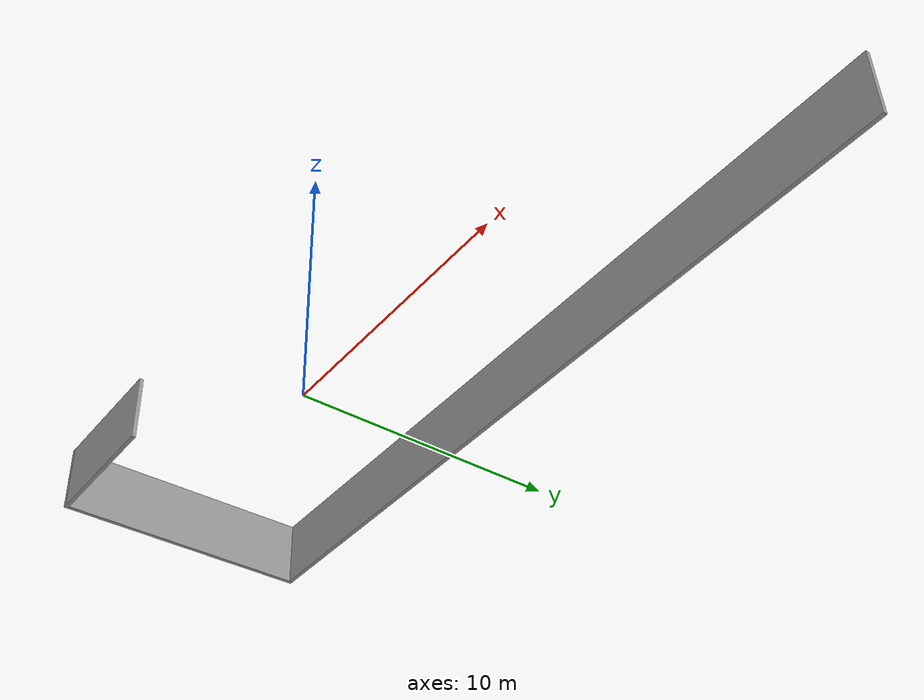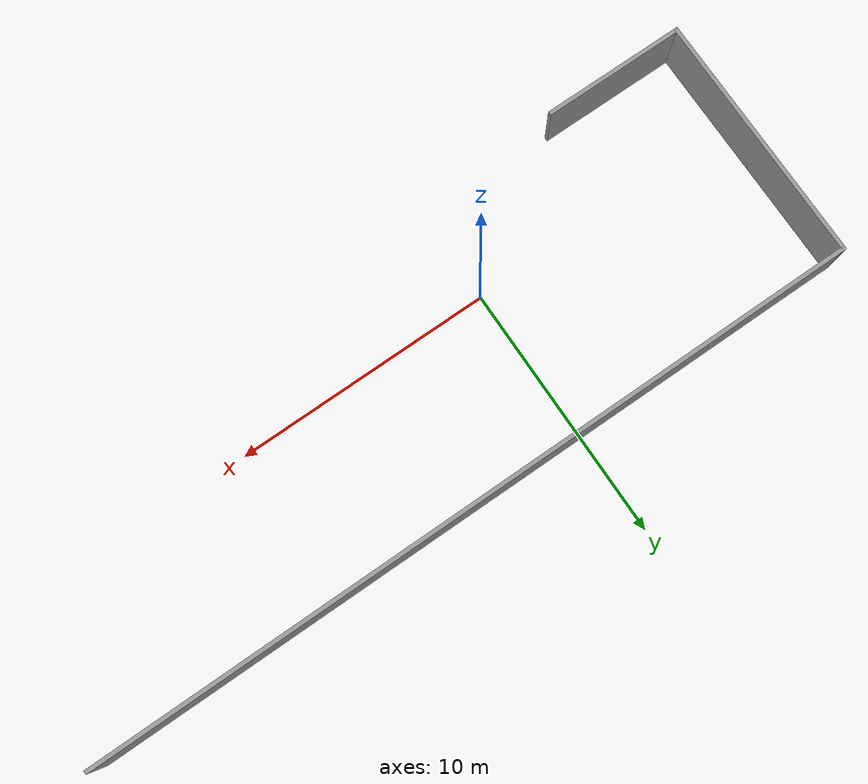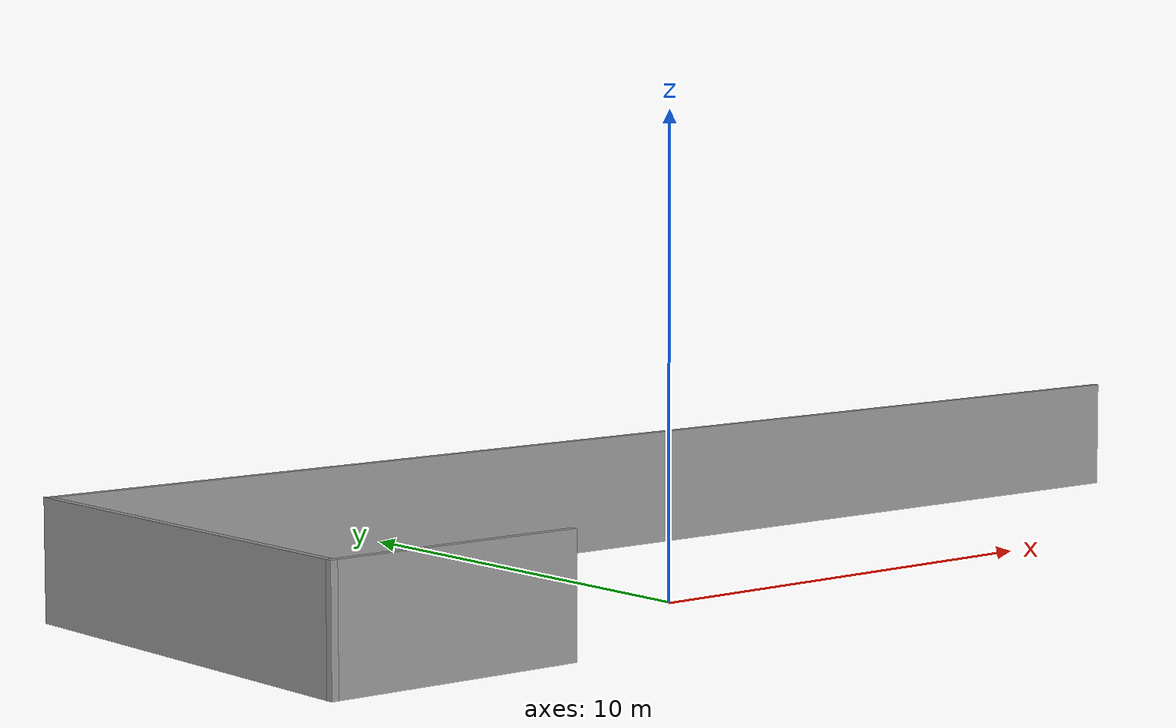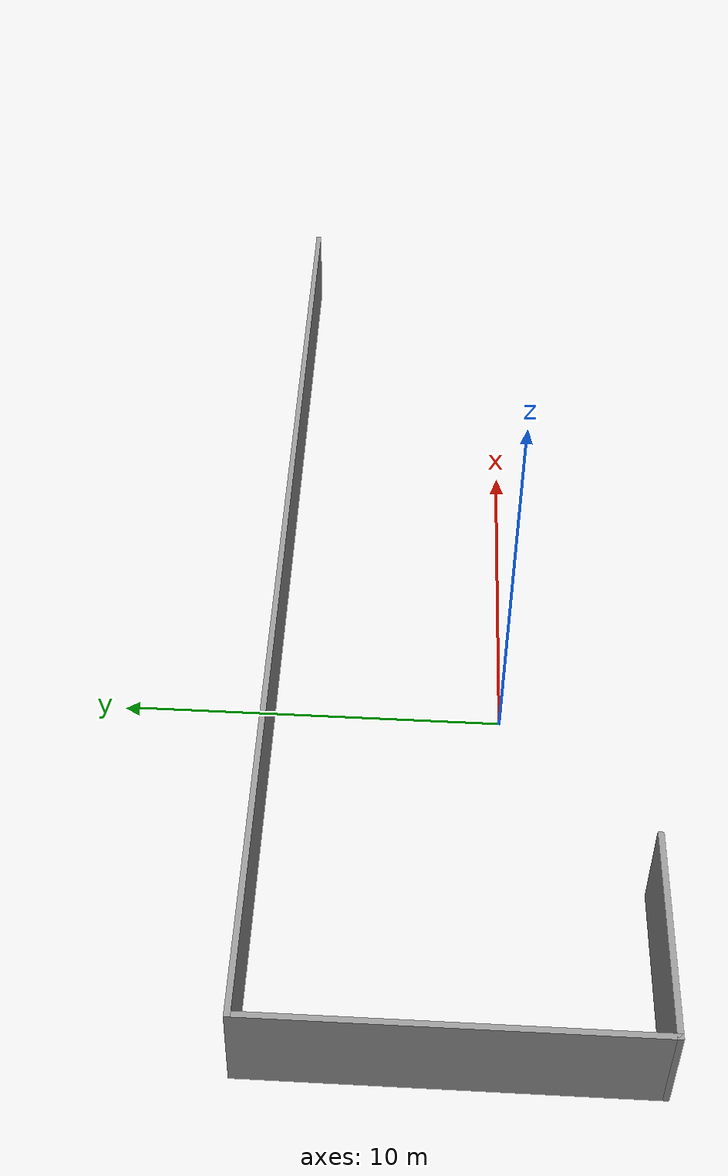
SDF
<?xml version='1.0'?>
<sdf version='1.7'>
  <model name='external_wall'>
    <pose>4.28 1.26 0 0 -0 0</pose>
    <link name='Wall_0'>
      <collision name='Wall_0_Collision'>
        <geometry>
          <box>
            <size>5.5 0.15 2.5</size>
          </box>
        </geometry>
        <pose>0 0 1.25 0 -0 0</pose>
      </collision>
      <visual name='Wall_0_Visual'>
        <pose>0 0 1.25 0 -0 0</pose>
        <geometry>
          <box>
            <size>5.5 0.15 2.5</size>
          </box>
        </geometry>
        <material>
          <script>
            <uri>file://media/materials/scripts/gazebo.material</uri>
            <name>Gazebo/Grey</name>
          </script>
          <ambient>1 1 1 1</ambient>
        </material>
        <meta>
          <layer>0</layer>
        </meta>
      </visual>
      <pose>-12.375 -4.8 0 0 -0 3.14159</pose>
    </link>
    <link name='Wall_3'>
      <collision name='Wall_3_Collision'>
        <geometry>
          <box>
            <size>9.75 0.15 2.5</size>
          </box>
        </geometry>
        <pose>0 0 1.25 0 -0 0</pose>
      </collision>
      <visual name='Wall_3_Visual'>
        <pose>0 0 1.25 0 -0 0</pose>
        <geometry>
          <box>
            <size>9.75 0.15 2.5</size>
          </box>
        </geometry>
        <material>
          <script>
            <uri>file://media/materials/scripts/gazebo.material</uri>
            <name>Gazebo/Grey</name>
          </script>
          <ambient>1 1 1 1</ambient>
        </material>
        <meta>
          <layer>0</layer>
        </meta>
      </visual>
      <pose>-15.05 0 0 0 -0 1.5708</pose>
    </link>
    <link name='Wall_5'>
      <collision name='Wall_5_Collision'>
        <geometry>
          <box>
            <size>30.25 0.15 2.5</size>
          </box>
        </geometry>
        <pose>0 0 1.25 0 -0 0</pose>
      </collision>
      <visual name='Wall_5_Visual'>
        <pose>0 0 1.25 0 -0 0</pose>
        <geometry>
          <box>
            <size>30.25 0.15 2.5</size>
          </box>
        </geometry>
        <material>
          <script>
            <uri>file://media/materials/scripts/gazebo.material</uri>
            <name>Gazebo/Grey</name>
          </script>
          <ambient>1 1 1 1</ambient>
        </material>
        <meta>
          <layer>0</layer>
        </meta>
      </visual>
      <pose>0 4.8 0 0 -0 0</pose>
    </link>
    <static>1</static>
  </model>
</sdf>
